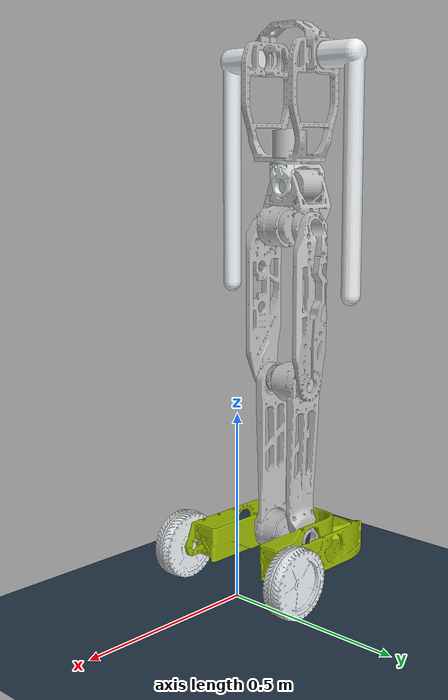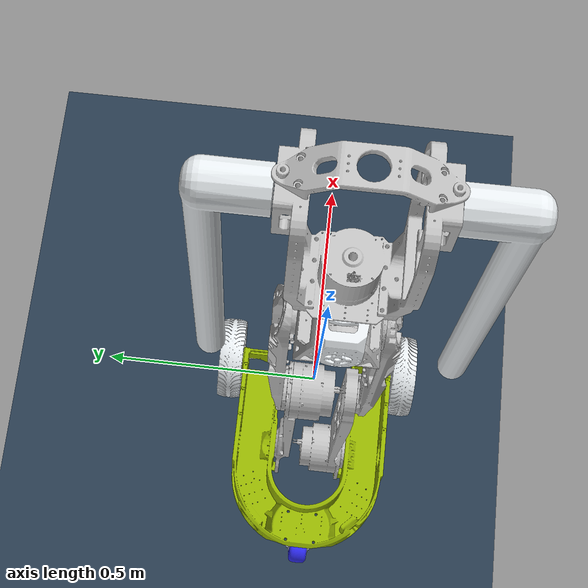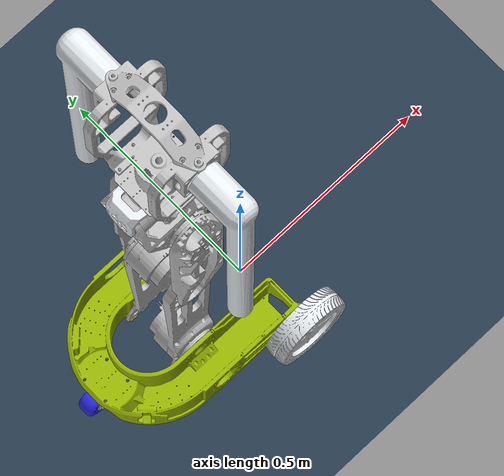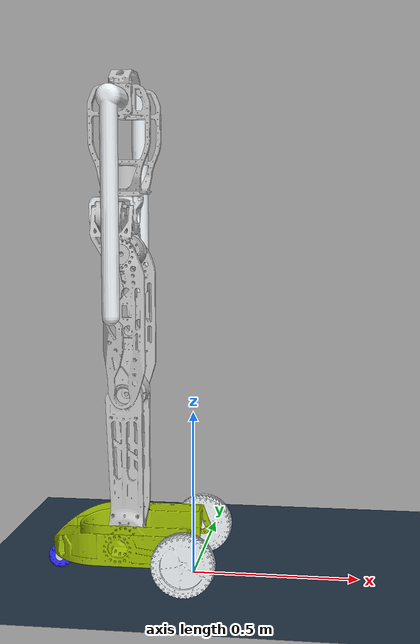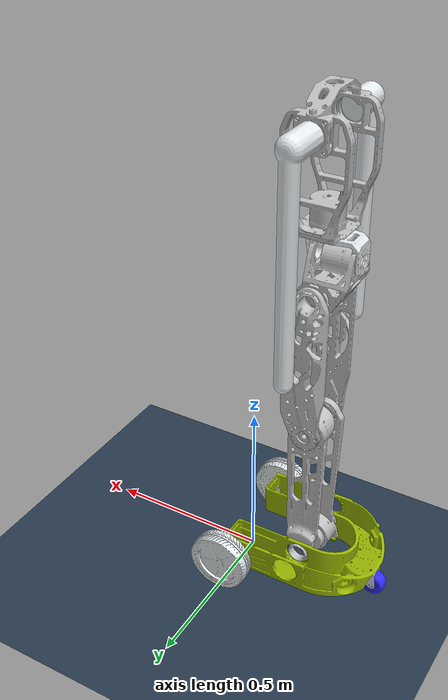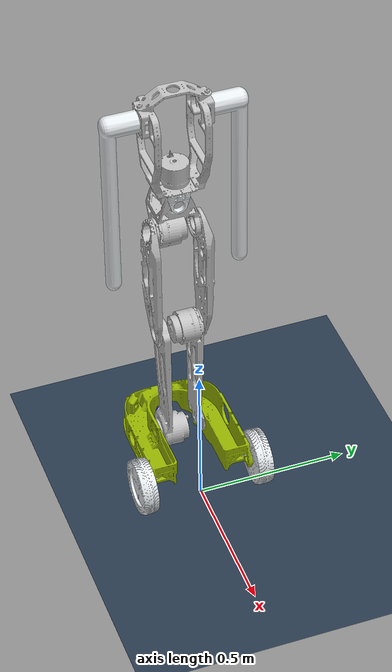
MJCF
<mujoco model="urdf简化装配体1211.SLDASM">
  <compiler angle="radian" meshdir="../meshes/"/>

  <option integrator="implicitfast"/>
  <option gravity="0 0 -9.81"/>
  <option timestep="0.002"/>

  <default>
    <joint armature="0.01" frictionloss="0.01" damping="0.01"/>
    <position kp="1000" dampratio="0.4" />
  </default>

  <asset>
    <mesh name="base_link_1211_evt2" content_type="model/stl" file="base_link_1211_evt2.STL"/>
    <mesh name="caster yaw-u" content_type="model/stl" file="caster yaw-u.STL"/>
    <mesh name="caster wheel-u" content_type="model/stl" file="caster wheel-u.STL"/>
    <mesh name="right wheel-u" content_type="model/stl" file="right wheel-u.STL"/>
    <mesh name="left wheel-u" content_type="model/stl" file="left wheel-u.STL"/>
    <mesh name="right s10 camera-u" content_type="model/stl" file="right s10 camera-u.STL"/>
    <mesh name="left s10 camera-u" content_type="model/stl" file="left s10 camera-u.STL"/>
    <mesh name="lower leg-u" content_type="model/stl" file="lower leg-u.STL"/>
    <mesh name="upper leg-u" content_type="model/stl" file="upper leg-u.STL"/>
    <mesh name="waist pitch" content_type="model/stl" file="waist pitch.STL"/>
    <mesh name="waist roll-u" content_type="model/stl" file="waist roll-u.STL"/>
    <mesh name="waist yaw-u" content_type="model/stl" file="waist yaw-u.STL"/>
    <mesh name="right arm-u" content_type="model/stl" file="right arm-u.STL"/>
    <mesh name="left arm-u" content_type="model/stl" file="left arm-u.STL"/>
    <mesh name="lidar-u" content_type="model/stl" file="lidar-u.STL"/>
    <mesh name="345 camera front-u" content_type="model/stl" file="345 camera front-u.STL"/>
    <mesh name="345 camera back-u" content_type="model/stl" file="345 camera back-u.STL"/>

    <texture type="skybox" builtin="gradient" rgb1="0.3 0.5 0.7" rgb2="0 0 0" width="512" height="512" />
    <texture name="texplane" type="2d" builtin="checker" rgb1=".2 .3 .4" rgb2=".1 0.15 0.2" width="512" height="512" mark="cross" markrgb=".8 .8 .8" />
    <material name="matplane" reflectance="0.3" texture="texplane" texrepeat="1 1" texuniform="true" />
  </asset>

  <worldbody>
    <geom name="floor" pos="0 0 0" size="15 15 1" type="plane" material="matplane" margin="0.001" condim="3" friction="1.5 0.8 0.6" />
    <light directional="true" diffuse=".4 .4 .4" specular="0.1 0.1 0.1" pos="0 0 5.0" dir="0 0 -1" castshadow="false" />
    <light directional="true" diffuse=".6 .6 .6" specular="0.2 0.2 0.2" pos="0 0 4" dir="0 0 -1" />

    <body name="Base_link" pos="0 0 0.0935" quat="1 0 0.0 0.0">
    <inertial pos="-0.205219826588883 -0.00319066223054669 0.00930572474901213" quat="1 0 0.0 0.0" mass="5.32413170017573" diaginertia="0.077068959488456 0.0890185263360713 0.157749815446039"/>
    <freejoint name="base_link" />
    <geom type="mesh" contype="0" conaffinity="0" group="1" density="0" rgba="0.584314 0.701961 0 1" mesh="base_link_1211_evt2"/>

    <body name="caster yaw-u" pos="-0.385 0 -0.0012">
      <inertial pos="-0.0129501 9.6275e-05 -0.0233043" quat="0.93116 0.000837014 -0.364522 -0.00803487" mass="0.0281386" diaginertia="2.89118e-05 2.27506e-05 1.63113e-05"/>
      <joint name="caster_yaw" pos="0 0 0" axis="0 0 -1"/>
      <geom type="mesh" contype="0" conaffinity="0" group="1" density="0" rgba="0.792157 0.819608 0.933333 1" mesh="caster yaw-u"/>
      <geom type="mesh" rgba="0.792157 0.819608 0.933333 1" mesh="caster yaw-u"/>

      <body name="caster wheel-u" pos="-0.032 0 -0.0548">
        <inertial pos="-3.46552e-08 -3.95823e-10 2.04729e-08" quat="0.66414 -0.24273 -0.24273 0.66414" mass="0.158597" diaginertia="0.0001059 7.14296e-05 7.14294e-05"/>
        <joint name="caster_rotate" pos="0 0 0" axis="0 -1 0"/>
        <geom type="mesh" contype="0" conaffinity="0" group="1" density="0" rgba="0.192157 0.176471 1 1" mesh="caster wheel-u"/>
        <geom type="mesh" rgba="0.192157 0.176471 1 1" mesh="caster wheel-u"/>
      </body>
    </body>

    <body name="right wheel-u" pos="0 -0.15224 0">
      <inertial pos="1.70257e-05 -0.0452826 1.78572e-05" quat="0.467102 0.530866 0.530722 0.46726" mass="3.12432" diaginertia="0.0135459 0.00734166 0.00733894"/>
      <joint name="right" pos="0 0 0" axis="0 1 0"/>
      <geom type="mesh" contype="0" conaffinity="0" group="1" density="0" rgba="0.898039 0.917647 0.929412 1" mesh="right wheel-u"/>
      <geom type="mesh" rgba="0.898039 0.917647 0.929412 1" mesh="right wheel-u"/>
    </body>

    <body name="left wheel-u" pos="0 0.15224 0">
      <inertial pos="-1.70235e-05 0.0452826 1.78558e-05" quat="0.530875 0.467091 0.46725 0.530731" mass="3.12432" diaginertia="0.0135459 0.00734166 0.00733894"/>
      <joint name="left" pos="0 0 0" axis="0 1 0"/>
      <geom type="mesh" contype="0" conaffinity="0" group="1" density="0" rgba="0.898039 0.917647 0.929412 1" mesh="left wheel-u"/>
      <geom type="mesh" rgba="0.898039 0.917647 0.929412 1" mesh="left wheel-u"/>
    </body>

    <body name="lower leg-u" pos="-0.2 -0.0453 0.0275">
      <inertial pos="0.00227103 0.0466715 0.211546" quat="0.705263 -0.00180991 0.00206667 0.70894" mass="3.04109" diaginertia="0.0585741 0.0553928 0.00354267"/>
      <joint name="ankle" pos="0 0 0" axis="0 -1 0"/>
      <geom type="mesh" contype="0" conaffinity="0" group="1" density="0" rgba="0.752941 0.752941 0.752941 1" mesh="lower leg-u"/>

      <body name="upper leg-u" pos="0 0.0856 0.434">
        <inertial pos="0.00897833 -0.0356025 0.227377" quat="0.706868 -0.00443012 0.00375675 0.707322" mass="4.43683" diaginertia="0.0784604 0.0735748 0.0056509"/>
        <joint name="knee" pos="0 0 0" axis="0 1 0"/>
        <geom type="mesh" contype="0" conaffinity="0" group="1" density="0" rgba="0.752941 0.752941 0.752941 1" mesh="upper leg-u"/>

        <body name="waist pitch" pos="0 -0.0806 0.4222">
          <inertial pos="-0.042007 0.0428333 0.083091" quat="0.375666 0.527478 -0.637391 0.417581" mass="2.26302" diaginertia="0.00540056 0.00495495 0.00474284"/>
          <joint name="hip" pos="0 0 0" axis="0 -1 0"/>
          <geom type="mesh" contype="0" conaffinity="0" group="1" density="0" rgba="0.752941 0.752941 0.752941 1" mesh="waist pitch"/>

          <body name="waist roll-u" pos="-0.0072 0.0403 0.1057">
            <inertial pos="-0.0167724 6.40679e-07 0.0393792" quat="1.01293e-05 0.817824 1.43953e-05 0.575468" mass="0.569027" diaginertia="0.00120447 0.00104987 0.000516181"/>
            <joint name="waist_roll" pos="0 0 0" axis="-1 0 0"/>
            <geom type="mesh" contype="0" conaffinity="0" group="1" density="0" rgba="0.898039 0.917647 0.929412 1" mesh="waist roll-u"/>

            <body name="waist yaw-u" pos="0.0072 0 0.1473">
              <inertial pos="0.0101786 -0.0036856 0.0389433" quat="0.835219 -0.083962 -0.0344578 0.542376" mass="5.08903" diaginertia="0.0361551 0.0322329 0.0217834"/>
              <joint name="waist_yaw" pos="0 0 0" axis="0 0 -1"/>
              <geom type="mesh" contype="0" conaffinity="0" group="1" density="0" rgba="0.752941 0.752941 0.752941 1" mesh="waist yaw-u"/>

              <body name="right arm-u" pos="0 -0.117 0.1852">
                <inertial pos="-9.30497e-08 -0.0830359 -0.238075" quat="0.999598 0.0283672 0 0" mass="4.29278" diaginertia="0.184539 0.183075 0.00313035"/>
                <joint name="right_arm_pitch" pos="0 0 0" axis="0 -1 0"/>
                <geom type="mesh" contype="0" conaffinity="0" group="1" density="0" rgba="0.898039 0.917647 0.929412 1" mesh="right arm-u"/>
              </body>

              <body name="left arm-u" pos="0 0.117 0.1852">
                <inertial pos="9.30497e-08 0.0830359 -0.238075" quat="0.999598 -0.0283672 0 0" mass="4.29278" diaginertia="0.184539 0.183075 0.00313035"/>
                <joint name="left_arm_pitch" pos="0 0 0" axis="0 1 0"/>
                <geom type="mesh" contype="0" conaffinity="0" group="1" density="0" rgba="0.898039 0.917647 0.929412 1" mesh="left arm-u"/>
              </body>
            </body>
          </body>
        </body>
      </body>
    </body>
    </body>
  </worldbody>

    <actuator>
    <velocity name="right" joint="right" ctrlrange="-10 20" kv="25"/>
    <velocity name="left" joint="left" ctrlrange="-10 20" kv="25"/>

    <position name="ankle" joint="ankle" ctrlrange="-3.14 3.14" kp="10000" dampratio="0.2" forcerange="-120 120"/>
    <position name="knee" joint="knee"  ctrlrange="-3.14 3.14" kp="5000" dampratio="0.5" forcerange="-120 120"/>
    <position name="hip" joint="hip"  ctrlrange="-3.14 3.14" kp="2000" dampratio="0.7" forcerange="-120 120"/>
    <position name="waist_roll" joint="waist_roll"  ctrlrange="-3.14 3.14" />
    <position name="waist_yaw" joint="waist_yaw"  ctrlrange="-3.14 3.14" />
  </actuator>

</mujoco>
